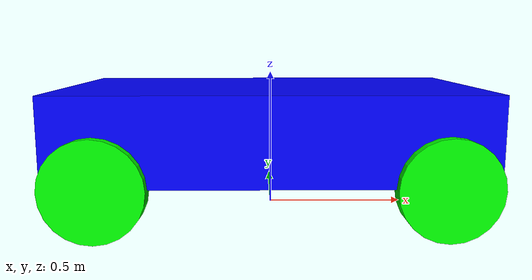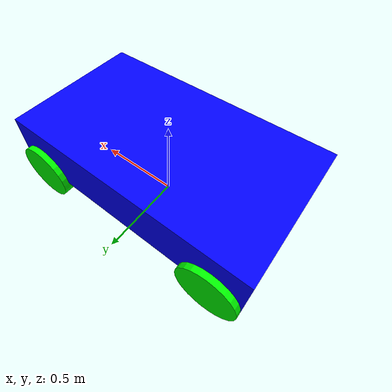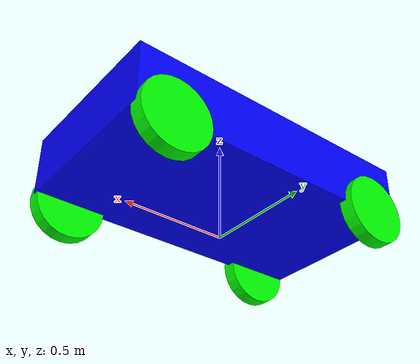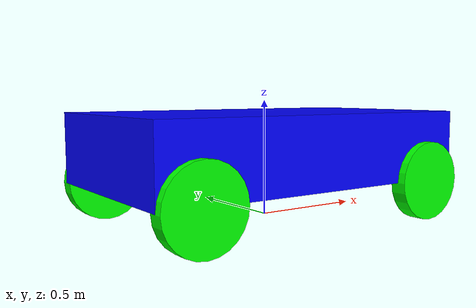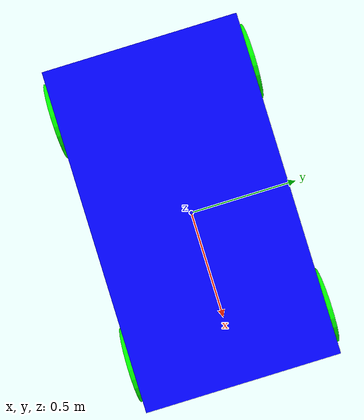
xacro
<?xml version="1.0"?>

<robot name="robot_1" xmlns:xacro="https://www.ros.org/wiki/xacro">

    <xacro:property name="radius" value="0.17" />
    <xacro:property name="distance_between_two_wheels" value="1.13" />
    <xacro:property name="width" value="0.84" />
    <xacro:property name="length" value="${2*radius + distance_between_two_wheels}" />
    <xacro:property name="height" value="0.3" />
    <xacro:property name="wheel_width" value="0.07" />
    <xacro:property name="mass" value="5" />
    <xacro:property name="wheel_mass" value="1" />

    <material name="blue">
        <color rgba="0 0 1 1"/>
    </material>
    <material name="green">
        <color rgba="0 1 0 1"/>
    </material>

<xacro:macro name="eylemsizlik_gövde" params="m l w h xyz rpy">
  <inertial>
    <origin xyz="${xyz}" rpy="${rpy}"/>
    <mass value="${m}"/>
    <inertia
      ixx="${(1/12)*m*(l*l + h*h)}"
      iyy="${(1/12)*m*(l*l + w*w)}"
      izz="${(1/12)*m*(h*h + w*w)}"
      ixy="0"
      ixz="0"
      iyz="0"/>
  </inertial>
</xacro:macro>

<xacro:macro name="eylemsizlik_silindir" params="m r h xyz rpy">
  <inertial>
    <origin xyz="${xyz}" rpy="${rpy}"/>
    <mass value="${m}"/>
    <inertia
      ixx="${(1/12)*m*(3*r*r+h*h)}"
      iyy="${(1/12)*m*(3*r*r+h*h)}"
      izz="${(1/2)*m*(r*r)}"
      ixy="0"
      ixz="0"
      iyz="0"/>
  </inertial>
</xacro:macro>

<xacro:macro name="renk" params="params">
    <gazebo reference="${params}">
        <material>Gazebo/Green</material>
    </gazebo>
</xacro:macro>

<gazebo reference="base_link">
    <material>Gazebo/Blue</material>
</gazebo>

<xacro:renk params="wheel_front_right"/>
<xacro:renk params="wheel_rear_right"/>
<xacro:renk params="wheel_front_left"/>
<xacro:renk params="wheel_rear_left"/>

    <link name="base_link">

        <visual>

            <geometry>

                <box size="${length} ${width} ${height}" />
                <!--mesh filename="package://" scale="0.1 0.1 0.1"/-->
            </geometry>

            <origin xyz="0 0 ${height}" rpy="0 0 0" />
            <material name="blue"/>
        </visual>
        <collision>
            <geometry>

                <box size="${length} ${width} ${height}" />
                <!--mesh filename="package://" scale="0.1 0.1 0.1"/-->
            </geometry>
            <origin xyz="0 0 ${height}" rpy="0 0 0" />
        </collision>
        <xacro:eylemsizlik_gövde m="${mass}" l="${length}" w="${width}" h="${height}" xyz="0 0 ${height}" rpy="0 0 0" />

    </link>

    <link name="wheel_rear_left">
        <visual>
            <geometry>

                <cylinder radius="${radius}" length="${wheel_width}" />

            </geometry>
            <material name="green"/>
            <origin xyz="0 0 0" rpy="1.57 0 0"/>
        </visual>
        <collision>
            <geometry>
                <cylinder radius="${radius}" length="${wheel_width}" />
            </geometry>
            <origin xyz="0 0 0" rpy="1.57 0 0"/>
        </collision>

        <xacro:eylemsizlik_silindir m="${wheel_mass}" r="${radius}" h="${wheel_width}" xyz="0 0 0" rpy="0 0 0" />
    </link>

    <link name="wheel_rear_right">
        <visual>
            <geometry>

                <cylinder radius="${radius}" length="${wheel_width}" />

            </geometry>
            <material name="green"/>
            <origin xyz="0 0 0" rpy="1.57 0 0"/>
        </visual>
        <collision>
            <geometry>
                <cylinder radius="${radius}" length="${wheel_width}" />
            </geometry>
            <origin xyz="0 0 0" rpy="1.57 0 0"/>
        </collision>

        <xacro:eylemsizlik_silindir m="${wheel_mass}" r="${radius}" h="${wheel_width}" xyz="0 0 0" rpy="0 0 0" />
    </link>

    <link name="wheel_front_left">
        <visual>
            <geometry>

                <cylinder radius="${radius}" length="${wheel_width}" />

            </geometry>
            <material name="green"/>
            <origin xyz="0 0 0" rpy="1.57 0 0"/>
        </visual>
        <collision>
            <geometry>
                <cylinder radius="${radius}" length="${wheel_width}" />
            </geometry>
            <origin xyz="0 0 0" rpy="1.57 0 0"/>
        </collision>

        <xacro:eylemsizlik_silindir m="${wheel_mass}" r="${radius}" h="${wheel_width}" xyz="0 0 0" rpy="0 0 0" />
    </link>

    <link name="wheel_front_right">
        <visual>
            <geometry>

                <cylinder radius="${radius}" length="${wheel_width}" />

            </geometry>
            <material name="green"/>
            <origin xyz="0 0 0" rpy="1.57 0 0"/>
        </visual>
        <collision>
            <geometry>
                <cylinder radius="${radius}" length="${wheel_width}" />
            </geometry>
            <origin xyz="0 0 0" rpy="1.57 0 0"/>
        </collision>

        <xacro:eylemsizlik_silindir m="${wheel_mass}" r="${radius}" h="${wheel_width}" xyz="0 0 0" rpy="0 0 0" />
    </link>

<xacro:macro name="wheel_link" params="param1 param2">
<link name="${param1}_${param2}_wheel_link">
  <visual>
    <geometry>
      <box size="0.00000001 0.00000001 0.00000001"/>
    </geometry>
  </visual>

  <collision>
    <geometry>
      <box size="0.00000001 0.00000001 0.00000001"/>
    </geometry>
  </collision>

  <inertial>
    <mass value="0.1"/>
    <inertia
      ixx="0.0001" iyy="0.0001" izz="0.0001"
      ixy="0" ixz="0" iyz="0"/>
  </inertial>
</link>
</xacro:macro>
<xacro:wheel_link param1="front" param2="right"/>
<xacro:wheel_link param1="rear" param2="right"/>
<xacro:wheel_link param1="front" param2="left"/>
<xacro:wheel_link param1="rear" param2="left"/>

    <joint name="name1" type="continuous">
        <parent link="rear_left_wheel_link" />
        <child link="wheel_rear_left" />
        <origin xyz="0 0 0" rpy="0 0 0" />
        <axis xyz="0 1 0"   />
    </joint>

<joint name="rear_left_steer_joint" type="revolute">
  <parent link="base_link"/>
  <child link="rear_left_wheel_link"/>
  <origin xyz="${-length/2 + radius} ${-width/2} ${height/2}" rpy="0 0 0"/>
  <axis xyz="0 0 1"/>
  <limit lower="-1.57" upper="1.57" effort="50" velocity="50"/>
</joint>

    <joint name="name2" type="continuous">
        <parent link="rear_right_wheel_link" />
        <child link="wheel_rear_right" />
        <origin xyz="0 0 0" rpy="0 0 0" />
        <axis xyz="0 1 0"   />
    </joint>

<joint name="rear_right_steer_joint" type="revolute">
  <parent link="base_link"/>
  <child link="rear_right_wheel_link"/>
  <origin xyz="${-length/2 + radius} ${width/2} ${height/2}" rpy="0 0 0"/>
  <axis xyz="0 0 1"/>
  <limit lower="-1.57" upper="1.57" effort="50" velocity="50"/>
</joint>

    <joint name="name3" type="continuous">
        <parent link="front_left_wheel_link" />
        <child link="wheel_front_left" />
        <origin xyz="0 0 0" rpy="0 0 0" />
        <axis xyz="0 1 0"   />
    </joint>

<joint name="front_left_steer_joint" type="revolute">
  <parent link="base_link"/>
  <child link="front_left_wheel_link"/>
  <origin xyz="${length/2 - radius} ${width/2} ${height/2}" rpy="0 0 0"/>
  <axis xyz="0 0 1"/>
  <limit lower="-1.57" upper="1.57" effort="50" velocity="50"/>
</joint>

    <joint name="name4" type="continuous">
        <parent link="front_right_wheel_link" />
        <child link="wheel_front_right" />
        <origin xyz="0 0 0" rpy="0 0 0" />
        <axis xyz="0 1 0"   />
    </joint>

<joint name="front_right_steer_joint" type="revolute">
  <parent link="base_link"/>
  <child link="front_right_wheel_link"/>
  <origin xyz="${length/2 - radius} ${-width/2} ${height/2}" rpy="0 0 0"/>
  <axis xyz="0 0 1"/>
  <limit lower="-1.57" upper="1.57" effort="50" velocity="50"/>
</joint>

<ros2_control name="GazeboSystem" type="system">
  <hardware>
    <plugin>gazebo_ros2_control/GazeboSystem</plugin>
  </hardware>

  <joint name="name1"><command_interface name="velocity"/>
    <state_interface name="velocity"/></joint>
  <joint name="name2"><command_interface name="velocity"/>
    <state_interface name="velocity"/></joint>
  <joint name="name3"><command_interface name="velocity"/>
    <state_interface name="velocity"/></joint>
  <joint name="name4"><command_interface name="velocity"/>
    <state_interface name="velocity"/></joint>

  <joint name="front_left_steer_joint"><command_interface name="position"/>
    <state_interface name="position"/></joint>
  <joint name="front_right_steer_joint"><command_interface name="position"/>
    <state_interface name="position"/></joint>
  <joint name="rear_left_steer_joint"><command_interface name="position"/>
    <state_interface name="position"/></joint>
  <joint name="rear_right_steer_joint"><command_interface name="position"/>
    <state_interface name="position"/></joint>
</ros2_control>

<gazebo reference="wheel_front_left">
  <mu1>10.0</mu1>
  <mu2>10.0</mu2>
</gazebo>

<gazebo reference="wheel_front_right">
  <mu1>10.0</mu1>
  <mu2>10.0</mu2>
</gazebo>

<gazebo reference="wheel_rear_left">
  <mu1>10.0</mu1>
  <mu2>10.0</mu2>
</gazebo>

<gazebo reference="wheel_rear_right">
  <mu1>10.0</mu1>
  <mu2>10.0</mu2>
</gazebo>

<gazebo>
    <plugin filename="libgazebo_ros2_control.so" name="gazebo_ros2_control">
      <parameters>$(find robot_1_description)/config/control.yaml</parameters>
    </plugin>
  </gazebo>

</robot>
